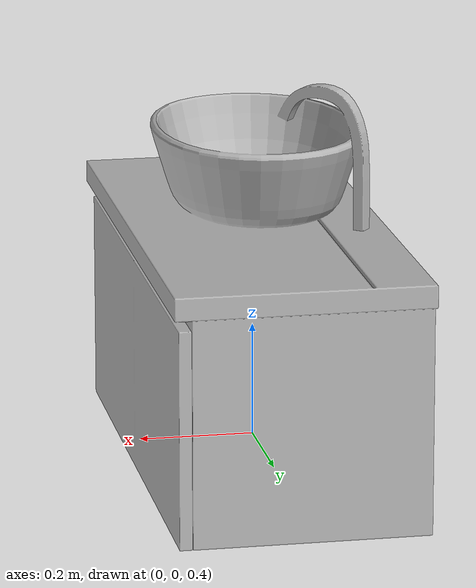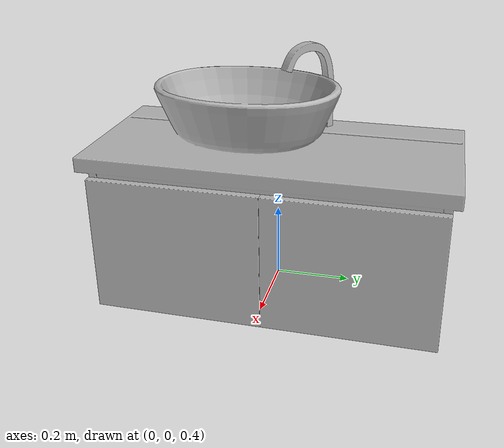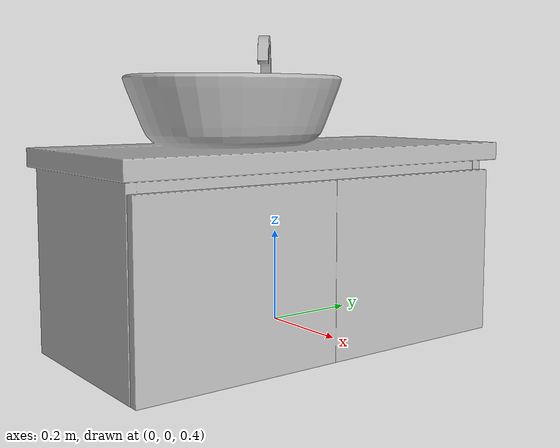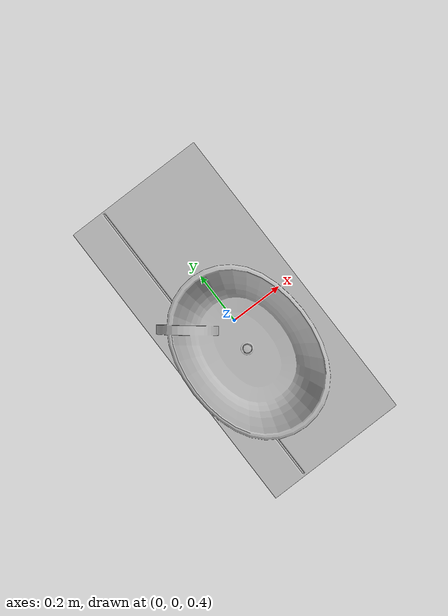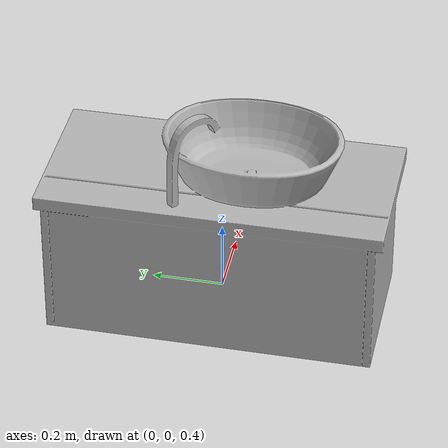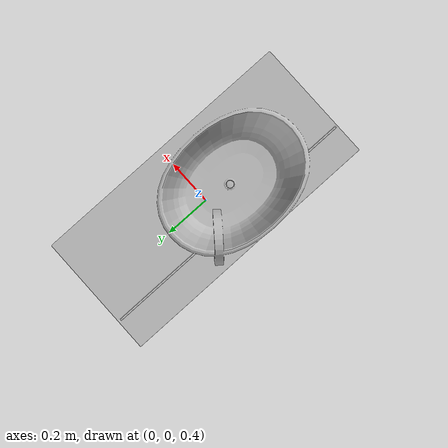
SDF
<?xml version='1.0'?>
<sdf version='1.4'>
  <model name='181'>
    <pose>0 0 0 0 0 0</pose>
    <static>true</static>
    <link name='link'>
      <collision name='collision'>
        <pose>0 0 0 0 0 0</pose>
        <geometry>
          <box>
            <size>0.44 0.96 2</size>
          </box>
        </geometry>
      </collision>
      <visual name='visual'>
        <pose>0 0 0 0 0 0</pose>
        <geometry>
          <mesh><uri>model://181/181.dae</uri></mesh>
        </geometry>
      </visual>
    </link>
  </model>
</sdf>
